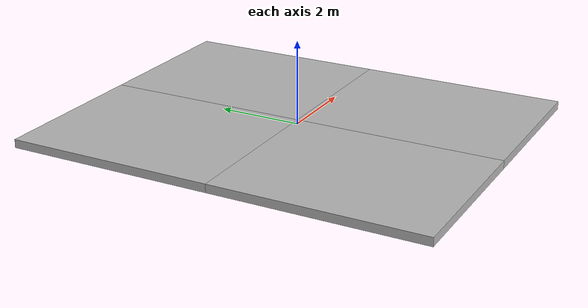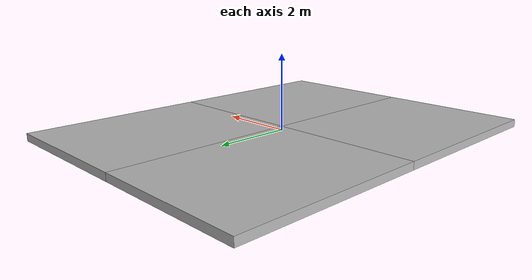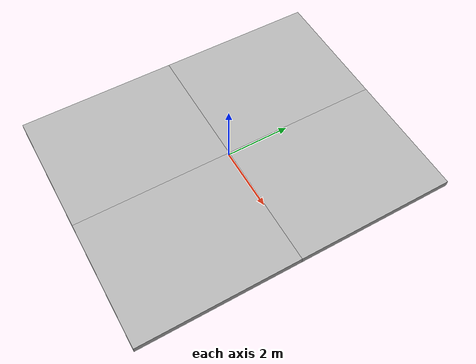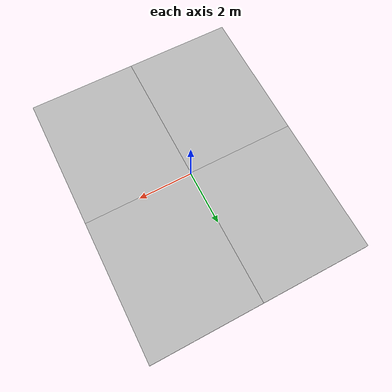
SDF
<sdf version="1.6">
 <world name="default">
  <light name="sun" type="directional">
   <pose>0 0 10 0 -0 0</pose>
   <diffuse>0.8 0.8 0.8 1</diffuse>
   <specular>0.1 0.1 0.1 1</specular>
   <attenuation>
    <range>1000</range>
    <constant>0.9</constant>
    <linear>0.01</linear>
    <quadratic>0.001</quadratic>
   </attenuation>
   <direction>-0.5 0.5 -1</direction>
  </light>
  <gravity>0 0 0</gravity>
  <magnetic_field>6e-06 2.3e-05 -4.2e-05</magnetic_field>
  <atmosphere type="adiabatic"/>
  <physics name="default_physics" default="0" type="ode">
   <max_step_size>0.001</max_step_size>
   <real_time_factor>1</real_time_factor>
   <real_time_update_rate>1000</real_time_update_rate>
  </physics>
  <scene><ambient>0.4 0.4 0.4 1</ambient><background>0.7 0.7 0.7 1</background><shadows>1</shadows></scene>
  <spherical_coordinates>
   <surface_model>EARTH_WGS84</surface_model>
   <latitude_deg>0</latitude_deg>
   <longitude_deg>0</longitude_deg>
   <elevation>0</elevation>
   <heading_deg>0</heading_deg>
  </spherical_coordinates>
  <model name="mud_box">
   <static>1</static>
   <link name="link">
    <collision name="collision"><geometry><box><size>8 10 0.2</size></box></geometry></collision>
    <visual name="visual_1">
     <pose>-2 2.5 0 0 -0 0</pose>
     <cast_shadows>0</cast_shadows>
     <geometry><box><size>4 5 0.2</size></box></geometry>
     <material>
      <script>
       <uri>model://mud_box/materials/scripts</uri>
       <uri>model://mud_box/materials/textures</uri>
       <name>vrc/mud</name>
      </script>
     </material>
    </visual>
    <visual name="visual_2">
     <pose>2 2.5 0 0 -0 0</pose>
     <cast_shadows>0</cast_shadows>
     <geometry><box><size>4 5 0.2</size></box></geometry>
     <material>
      <script>
       <uri>model://mud_box/materials/scripts</uri>
       <uri>model://mud_box/materials/textures</uri>
       <name>vrc/mud</name>
      </script>
     </material>
    </visual>
    <visual name="visual_3">
     <pose>2 -2.5 0 0 -0 0</pose>
     <cast_shadows>0</cast_shadows>
     <geometry><box><size>4 5 0.2</size></box></geometry>
     <material>
      <script>
       <uri>model://mud_box/materials/scripts</uri>
       <uri>model://mud_box/materials/textures</uri>
       <name>vrc/mud</name>
      </script>
     </material>
    </visual>
    <visual name="visual_4">
     <pose>-2 -2.5 0 0 -0 0</pose>
     <cast_shadows>0</cast_shadows>
     <geometry><box><size>4 5 0.2</size></box></geometry>
     <material>
      <script>
       <uri>model://mud_box/materials/scripts</uri>
       <uri>model://mud_box/materials/textures</uri>
       <name>vrc/mud</name>
      </script>
     </material>
    </visual>
   </link>
  </model>
 </world>
</sdf>
